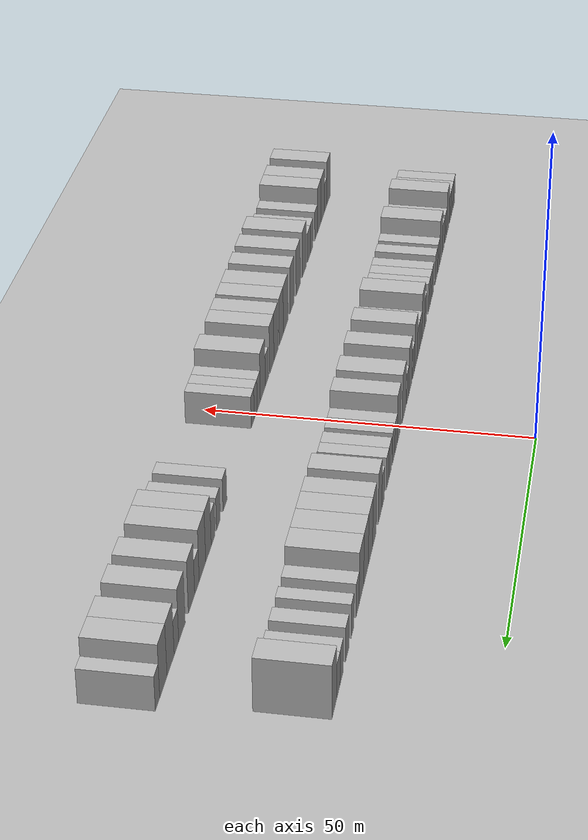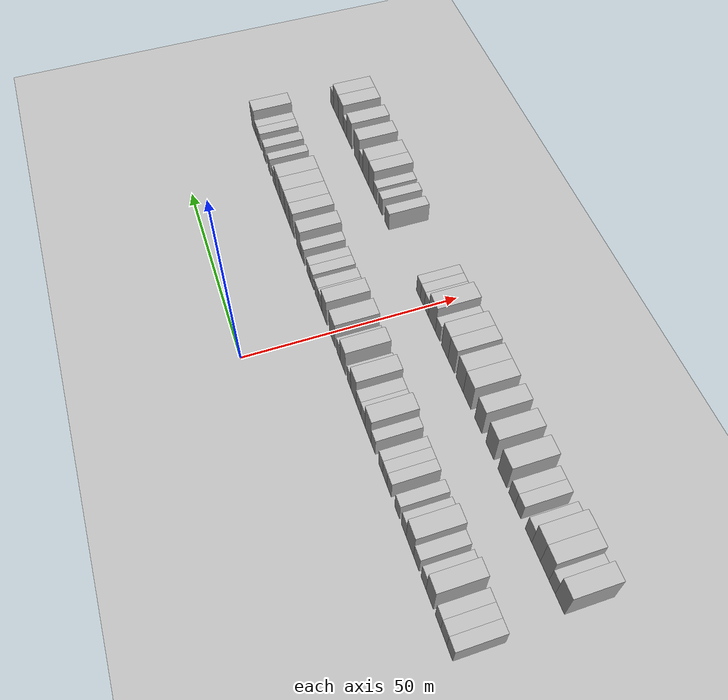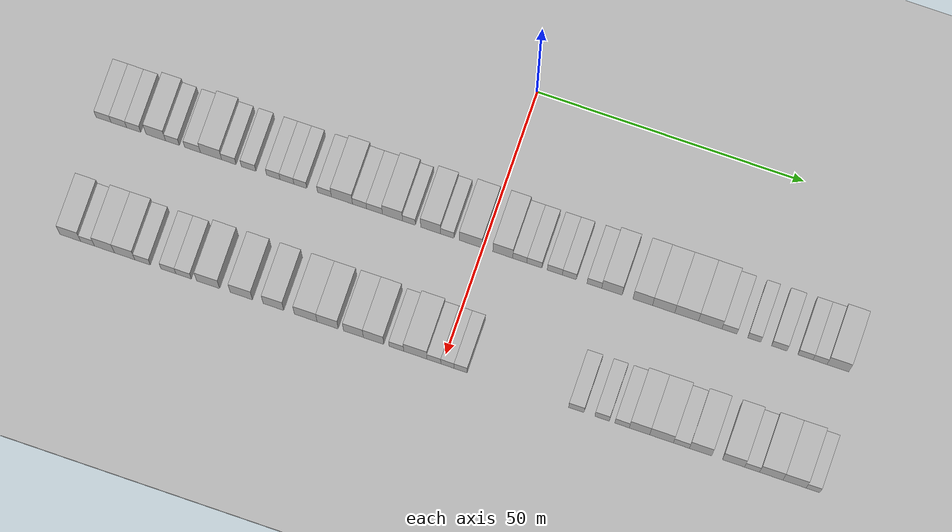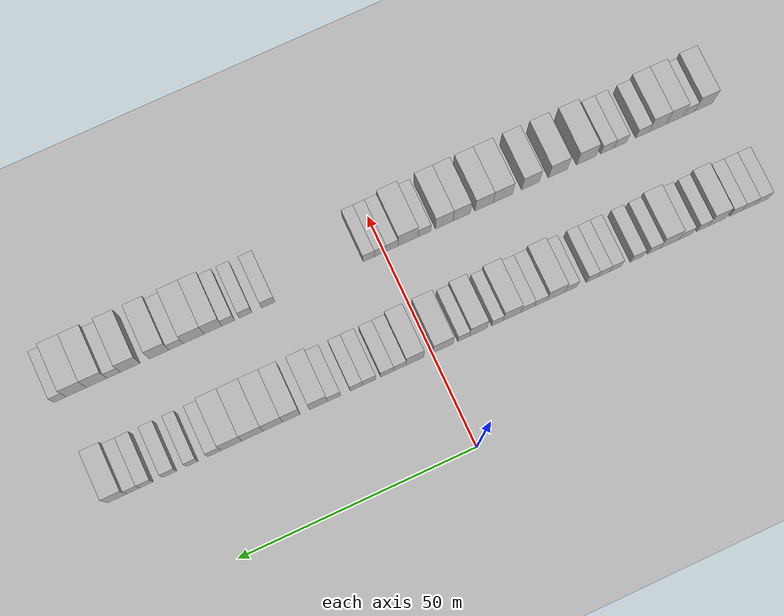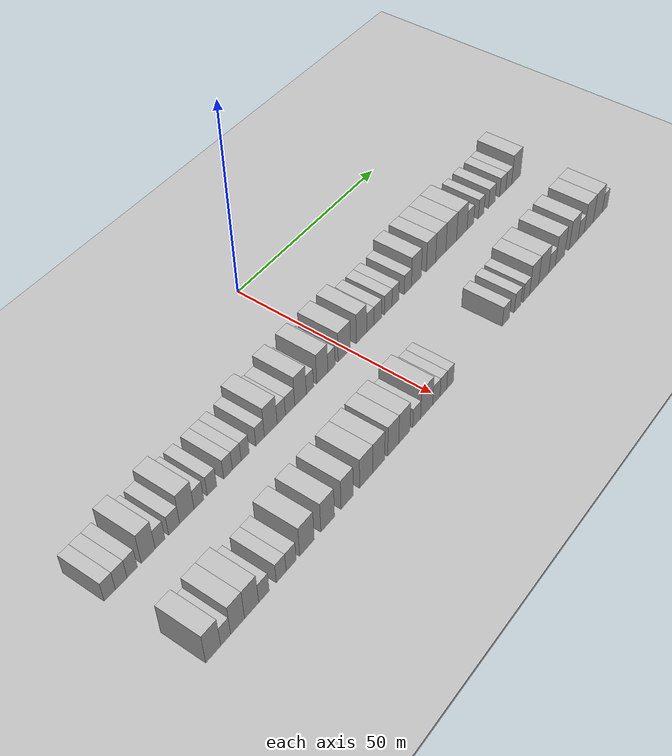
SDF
<sdf version="1.6">
 <world name="default">
  <include><name>ground_plane_1</name><uri>model://HANNAS_ground_plane</uri></include>
  <include>
   <name>ground_plane_2</name>
   <uri>model://HANNAS_ground_plane</uri>
   <pose>100 0 0  0 0 0</pose>
  </include>
  <model name="building_36">
   <static>1</static>
   <pose>25.0000 -71.3508 0 0.000000 0.000000 0.000000</pose>
   <link name="link">
    <pose>0 0 3.00 0 0 0</pose>
    <collision name="collision"><geometry><box><size>10.0000 2.8141 6.0000</size></box></geometry></collision>
    <visual name="visual">
     <cast_shadows>0</cast_shadows>
     <geometry><box><size>10.0000 2.8141 6.0000</size></box></geometry>
     <material>
      <script>
       <uri>model://HANNAS_wall/materials/scripts</uri>
       <uri>model://HANNAS_wall/materials/textures</uri>
       <name>vrc/HANNAS_wall</name>
      </script>
     </material>
    </visual>
   </link>
  </model>
  <model name="building_37">
   <static>1</static>
   <pose>25.0000 -68.4690 0 0.000000 0.000000 0.000000</pose>
   <link name="link">
    <pose>0 0 3.00 0 0 0</pose>
    <collision name="collision"><geometry><box><size>10.0000 2.9496 6.0000</size></box></geometry></collision>
    <visual name="visual">
     <cast_shadows>0</cast_shadows>
     <geometry><box><size>10.0000 2.9496 6.0000</size></box></geometry>
     <material>
      <script>
       <uri>model://HANNAS_wall/materials/scripts</uri>
       <uri>model://HANNAS_wall/materials/textures</uri>
       <name>vrc/HANNAS_wall</name>
      </script>
     </material>
    </visual>
   </link>
  </model>
  <model name="building_38">
   <static>1</static>
   <pose>25.0000 -65.6569 0 0.000000 0.000000 0.000000</pose>
   <link name="link">
    <pose>0 0 3.00 0 0 0</pose>
    <collision name="collision"><geometry><box><size>10.0000 2.6744 6.0000</size></box></geometry></collision>
    <visual name="visual">
     <cast_shadows>0</cast_shadows>
     <geometry><box><size>10.0000 2.6744 6.0000</size></box></geometry>
     <material>
      <script>
       <uri>model://HANNAS_wall/materials/scripts</uri>
       <uri>model://HANNAS_wall/materials/textures</uri>
       <name>vrc/HANNAS_wall</name>
      </script>
     </material>
    </visual>
   </link>
  </model>
  <model name="building_39">
   <static>1</static>
   <pose>25.0000 -61.4845 0 0.000000 0.000000 0.000000</pose>
   <link name="link">
    <pose>0 0 4.50 0 0 0</pose>
    <collision name="collision"><geometry><box><size>10.0000 3.6704 9.0000</size></box></geometry></collision>
    <visual name="visual">
     <cast_shadows>0</cast_shadows>
     <geometry><box><size>10.0000 3.6704 9.0000</size></box></geometry>
     <material>
      <script>
       <uri>model://HANNAS_wall/materials/scripts</uri>
       <uri>model://HANNAS_wall/materials/textures</uri>
       <name>vrc/HANNAS_wall</name>
      </script>
     </material>
    </visual>
   </link>
  </model>
  <model name="building_40">
   <static>1</static>
   <pose>25.0000 -58.3375 0 0.000000 0.000000 0.000000</pose>
   <link name="link">
    <pose>0 0 3.00 0 0 0</pose>
    <collision name="collision"><geometry><box><size>10.0000 2.6237 6.0000</size></box></geometry></collision>
    <visual name="visual">
     <cast_shadows>0</cast_shadows>
     <geometry><box><size>10.0000 2.6237 6.0000</size></box></geometry>
     <material>
      <script>
       <uri>model://HANNAS_wall/materials/scripts</uri>
       <uri>model://HANNAS_wall/materials/textures</uri>
       <name>vrc/HANNAS_wall</name>
      </script>
     </material>
    </visual>
   </link>
  </model>
  <model name="building_41">
   <static>1</static>
   <pose>25.0000 -54.5407 0 0.000000 0.000000 0.000000</pose>
   <link name="link">
    <pose>0 0 3.00 0 0 0</pose>
    <collision name="collision"><geometry><box><size>10.0000 2.9699 6.0000</size></box></geometry></collision>
    <visual name="visual">
     <cast_shadows>0</cast_shadows>
     <geometry><box><size>10.0000 2.9699 6.0000</size></box></geometry>
     <material>
      <script>
       <uri>model://HANNAS_wall/materials/scripts</uri>
       <uri>model://HANNAS_wall/materials/textures</uri>
       <name>vrc/HANNAS_wall</name>
      </script>
     </material>
    </visual>
   </link>
  </model>
  <model name="building_42">
   <static>1</static>
   <pose>25.0000 -51.0551 0 0.000000 0.000000 0.000000</pose>
   <link name="link">
    <pose>0 0 4.50 0 0 0</pose>
    <collision name="collision"><geometry><box><size>10.0000 4.0013 9.0000</size></box></geometry></collision>
    <visual name="visual">
     <cast_shadows>0</cast_shadows>
     <geometry><box><size>10.0000 4.0013 9.0000</size></box></geometry>
     <material>
      <script>
       <uri>model://HANNAS_wall/materials/scripts</uri>
       <uri>model://HANNAS_wall/materials/textures</uri>
       <name>vrc/HANNAS_wall</name>
      </script>
     </material>
    </visual>
   </link>
  </model>
  <model name="building_43">
   <static>1</static>
   <pose>25.0000 -47.6975 0 0.000000 0.000000 0.000000</pose>
   <link name="link">
    <pose>0 0 3.00 0 0 0</pose>
    <collision name="collision"><geometry><box><size>10.0000 2.7139 6.0000</size></box></geometry></collision>
    <visual name="visual">
     <cast_shadows>0</cast_shadows>
     <geometry><box><size>10.0000 2.7139 6.0000</size></box></geometry>
     <material>
      <script>
       <uri>model://HANNAS_wall/materials/scripts</uri>
       <uri>model://HANNAS_wall/materials/textures</uri>
       <name>vrc/HANNAS_wall</name>
      </script>
     </material>
    </visual>
   </link>
  </model>
  <model name="building_44">
   <static>1</static>
   <pose>25.0000 -43.9743 0 0.000000 0.000000 0.000000</pose>
   <link name="link">
    <pose>0 0 3.00 0 0 0</pose>
    <collision name="collision"><geometry><box><size>10.0000 2.7326 6.0000</size></box></geometry></collision>
    <visual name="visual">
     <cast_shadows>0</cast_shadows>
     <geometry><box><size>10.0000 2.7326 6.0000</size></box></geometry>
     <material>
      <script>
       <uri>model://HANNAS_wall/materials/scripts</uri>
       <uri>model://HANNAS_wall/materials/textures</uri>
       <name>vrc/HANNAS_wall</name>
      </script>
     </material>
    </visual>
   </link>
  </model>
  <model name="building_45">
   <static>1</static>
   <pose>25.0000 -39.3342 0 0.000000 0.000000 0.000000</pose>
   <link name="link">
    <pose>0 0 3.00 0 0 0</pose>
    <collision name="collision"><geometry><box><size>10.0000 2.5474 6.0000</size></box></geometry></collision>
    <visual name="visual">
     <cast_shadows>0</cast_shadows>
     <geometry><box><size>10.0000 2.5474 6.0000</size></box></geometry>
     <material>
      <script>
       <uri>model://HANNAS_wall/materials/scripts</uri>
       <uri>model://HANNAS_wall/materials/textures</uri>
       <name>vrc/HANNAS_wall</name>
      </script>
     </material>
    </visual>
   </link>
  </model>
  <model name="building_46">
   <static>1</static>
   <pose>25.0000 -36.7564 0 0.000000 0.000000 0.000000</pose>
   <link name="link">
    <pose>0 0 3.00 0 0 0</pose>
    <collision name="collision"><geometry><box><size>10.0000 2.6083 6.0000</size></box></geometry></collision>
    <visual name="visual">
     <cast_shadows>0</cast_shadows>
     <geometry><box><size>10.0000 2.6083 6.0000</size></box></geometry>
     <material>
      <script>
       <uri>model://HANNAS_wall/materials/scripts</uri>
       <uri>model://HANNAS_wall/materials/textures</uri>
       <name>vrc/HANNAS_wall</name>
      </script>
     </material>
    </visual>
   </link>
  </model>
  <model name="building_47">
   <static>1</static>
   <pose>25.0000 -34.2392 0 0.000000 0.000000 0.000000</pose>
   <link name="link">
    <pose>0 0 3.00 0 0 0</pose>
    <collision name="collision"><geometry><box><size>10.0000 2.4261 6.0000</size></box></geometry></collision>
    <visual name="visual">
     <cast_shadows>0</cast_shadows>
     <geometry><box><size>10.0000 2.4261 6.0000</size></box></geometry>
     <material>
      <script>
       <uri>model://HANNAS_wall/materials/scripts</uri>
       <uri>model://HANNAS_wall/materials/textures</uri>
       <name>vrc/HANNAS_wall</name>
      </script>
     </material>
    </visual>
   </link>
  </model>
  <model name="building_48">
   <static>1</static>
   <pose>25.0000 -29.7129 0 0.000000 0.000000 0.000000</pose>
   <link name="link">
    <pose>0 0 3.00 0 0 0</pose>
    <collision name="collision"><geometry><box><size>10.0000 2.6264 6.0000</size></box></geometry></collision>
    <visual name="visual">
     <cast_shadows>0</cast_shadows>
     <geometry><box><size>10.0000 2.6264 6.0000</size></box></geometry>
     <material>
      <script>
       <uri>model://HANNAS_wall/materials/scripts</uri>
       <uri>model://HANNAS_wall/materials/textures</uri>
       <name>vrc/HANNAS_wall</name>
      </script>
     </material>
    </visual>
   </link>
  </model>
  <model name="building_49">
   <static>1</static>
   <pose>25.0000 -26.4255 0 0.000000 0.000000 0.000000</pose>
   <link name="link">
    <pose>0 0 4.50 0 0 0</pose>
    <collision name="collision"><geometry><box><size>10.0000 3.9484 9.0000</size></box></geometry></collision>
    <visual name="visual">
     <cast_shadows>0</cast_shadows>
     <geometry><box><size>10.0000 3.9484 9.0000</size></box></geometry>
     <material>
      <script>
       <uri>model://HANNAS_wall/materials/scripts</uri>
       <uri>model://HANNAS_wall/materials/textures</uri>
       <name>vrc/HANNAS_wall</name>
      </script>
     </material>
    </visual>
   </link>
  </model>
  <model name="building_50">
   <static>1</static>
   <pose>25.0000 -23.1277 0 0.000000 0.000000 0.000000</pose>
   <link name="link">
    <pose>0 0 3.00 0 0 0</pose>
    <collision name="collision"><geometry><box><size>10.0000 2.6472 6.0000</size></box></geometry></collision>
    <visual name="visual">
     <cast_shadows>0</cast_shadows>
     <geometry><box><size>10.0000 2.6472 6.0000</size></box></geometry>
     <material>
      <script>
       <uri>model://HANNAS_wall/materials/scripts</uri>
       <uri>model://HANNAS_wall/materials/textures</uri>
       <name>vrc/HANNAS_wall</name>
      </script>
     </material>
    </visual>
   </link>
  </model>
  <model name="building_51">
   <static>1</static>
   <pose>25.0000 -20.3226 0 0.000000 0.000000 0.000000</pose>
   <link name="link">
    <pose>0 0 3.00 0 0 0</pose>
    <collision name="collision"><geometry><box><size>10.0000 2.9630 6.0000</size></box></geometry></collision>
    <visual name="visual">
     <cast_shadows>0</cast_shadows>
     <geometry><box><size>10.0000 2.9630 6.0000</size></box></geometry>
     <material>
      <script>
       <uri>model://HANNAS_wall/materials/scripts</uri>
       <uri>model://HANNAS_wall/materials/textures</uri>
       <name>vrc/HANNAS_wall</name>
      </script>
     </material>
    </visual>
   </link>
  </model>
  <model name="building_52">
   <static>1</static>
   <pose>25.0000 -16.9507 0 0.000000 0.000000 0.000000</pose>
   <link name="link">
    <pose>0 0 4.50 0 0 0</pose>
    <collision name="collision"><geometry><box><size>10.0000 3.7808 9.0000</size></box></geometry></collision>
    <visual name="visual">
     <cast_shadows>0</cast_shadows>
     <geometry><box><size>10.0000 3.7808 9.0000</size></box></geometry>
     <material>
      <script>
       <uri>model://HANNAS_wall/materials/scripts</uri>
       <uri>model://HANNAS_wall/materials/textures</uri>
       <name>vrc/HANNAS_wall</name>
      </script>
     </material>
    </visual>
   </link>
  </model>
  <model name="building_53">
   <static>1</static>
   <pose>25.0000 -13.8546 0 0.000000 0.000000 0.000000</pose>
   <link name="link">
    <pose>0 0 3.00 0 0 0</pose>
    <collision name="collision"><geometry><box><size>10.0000 2.4114 6.0000</size></box></geometry></collision>
    <visual name="visual">
     <cast_shadows>0</cast_shadows>
     <geometry><box><size>10.0000 2.4114 6.0000</size></box></geometry>
     <material>
      <script>
       <uri>model://HANNAS_wall/materials/scripts</uri>
       <uri>model://HANNAS_wall/materials/textures</uri>
       <name>vrc/HANNAS_wall</name>
      </script>
     </material>
    </visual>
   </link>
  </model>
  <model name="building_54">
   <static>1</static>
   <pose>25.0000 -9.7814 0 0.000000 0.000000 0.000000</pose>
   <link name="link">
    <pose>0 0 4.50 0 0 0</pose>
    <collision name="collision"><geometry><box><size>10.0000 3.7350 9.0000</size></box></geometry></collision>
    <visual name="visual">
     <cast_shadows>0</cast_shadows>
     <geometry><box><size>10.0000 3.7350 9.0000</size></box></geometry>
     <material>
      <script>
       <uri>model://HANNAS_wall/materials/scripts</uri>
       <uri>model://HANNAS_wall/materials/textures</uri>
       <name>vrc/HANNAS_wall</name>
      </script>
     </material>
    </visual>
   </link>
  </model>
  <model name="building_55">
   <static>1</static>
   <pose>25.0000 -6.6591 0 0.000000 0.000000 0.000000</pose>
   <link name="link">
    <pose>0 0 3.00 0 0 0</pose>
    <collision name="collision"><geometry><box><size>10.0000 2.5096 6.0000</size></box></geometry></collision>
    <visual name="visual">
     <cast_shadows>0</cast_shadows>
     <geometry><box><size>10.0000 2.5096 6.0000</size></box></geometry>
     <material>
      <script>
       <uri>model://HANNAS_wall/materials/scripts</uri>
       <uri>model://HANNAS_wall/materials/textures</uri>
       <name>vrc/HANNAS_wall</name>
      </script>
     </material>
    </visual>
   </link>
  </model>
  <model name="building_56">
   <static>1</static>
   <pose>25.0000 -2.2731 0 0.000000 0.000000 0.000000</pose>
   <link name="link">
    <pose>0 0 4.50 0 0 0</pose>
    <collision name="collision"><geometry><box><size>10.0000 4.2625 9.0000</size></box></geometry></collision>
    <visual name="visual">
     <cast_shadows>0</cast_shadows>
     <geometry><box><size>10.0000 4.2625 9.0000</size></box></geometry>
     <material>
      <script>
       <uri>model://HANNAS_wall/materials/scripts</uri>
       <uri>model://HANNAS_wall/materials/textures</uri>
       <name>vrc/HANNAS_wall</name>
      </script>
     </material>
    </visual>
   </link>
  </model>
  <model name="building_57">
   <static>1</static>
   <pose>25.0000 3.7232 0 0.000000 0.000000 0.000000</pose>
   <link name="link">
    <pose>0 0 4.50 0 0 0</pose>
    <collision name="collision"><geometry><box><size>10.0000 3.7302 9.0000</size></box></geometry></collision>
    <visual name="visual">
     <cast_shadows>0</cast_shadows>
     <geometry><box><size>10.0000 3.7302 9.0000</size></box></geometry>
     <material>
      <script>
       <uri>model://HANNAS_wall/materials/scripts</uri>
       <uri>model://HANNAS_wall/materials/textures</uri>
       <name>vrc/HANNAS_wall</name>
      </script>
     </material>
    </visual>
   </link>
  </model>
  <model name="building_58">
   <static>1</static>
   <pose>25.0000 6.9071 0 0.000000 0.000000 0.000000</pose>
   <link name="link">
    <pose>0 0 3.00 0 0 0</pose>
    <collision name="collision"><geometry><box><size>10.0000 2.6374 6.0000</size></box></geometry></collision>
    <visual name="visual">
     <cast_shadows>0</cast_shadows>
     <geometry><box><size>10.0000 2.6374 6.0000</size></box></geometry>
     <material>
      <script>
       <uri>model://HANNAS_wall/materials/scripts</uri>
       <uri>model://HANNAS_wall/materials/textures</uri>
       <name>vrc/HANNAS_wall</name>
      </script>
     </material>
    </visual>
   </link>
  </model>
  <model name="building_59">
   <static>1</static>
   <pose>25.0000 9.6293 0 0.000000 0.000000 0.000000</pose>
   <link name="link">
    <pose>0 0 3.00 0 0 0</pose>
    <collision name="collision"><geometry><box><size>10.0000 2.8071 6.0000</size></box></geometry></collision>
    <visual name="visual">
     <cast_shadows>0</cast_shadows>
     <geometry><box><size>10.0000 2.8071 6.0000</size></box></geometry>
     <material>
      <script>
       <uri>model://HANNAS_wall/materials/scripts</uri>
       <uri>model://HANNAS_wall/materials/textures</uri>
       <name>vrc/HANNAS_wall</name>
      </script>
     </material>
    </visual>
   </link>
  </model>
  <model name="building_60">
   <static>1</static>
   <pose>25.0000 13.4493 0 0.000000 0.000000 0.000000</pose>
   <link name="link">
    <pose>0 0 3.00 0 0 0</pose>
    <collision name="collision"><geometry><box><size>10.0000 2.8329 6.0000</size></box></geometry></collision>
    <visual name="visual">
     <cast_shadows>0</cast_shadows>
     <geometry><box><size>10.0000 2.8329 6.0000</size></box></geometry>
     <material>
      <script>
       <uri>model://HANNAS_wall/materials/scripts</uri>
       <uri>model://HANNAS_wall/materials/textures</uri>
       <name>vrc/HANNAS_wall</name>
      </script>
     </material>
    </visual>
   </link>
  </model>
  <model name="building_61">
   <static>1</static>
   <pose>25.0000 16.1654 0 0.000000 0.000000 0.000000</pose>
   <link name="link">
    <pose>0 0 3.00 0 0 0</pose>
    <collision name="collision"><geometry><box><size>10.0000 2.5995 6.0000</size></box></geometry></collision>
    <visual name="visual">
     <cast_shadows>0</cast_shadows>
     <geometry><box><size>10.0000 2.5995 6.0000</size></box></geometry>
     <material>
      <script>
       <uri>model://HANNAS_wall/materials/scripts</uri>
       <uri>model://HANNAS_wall/materials/textures</uri>
       <name>vrc/HANNAS_wall</name>
      </script>
     </material>
    </visual>
   </link>
  </model>
  <model name="building_62">
   <static>1</static>
   <pose>25.0000 20.8478 0 0.000000 0.000000 0.000000</pose>
   <link name="link">
    <pose>0 0 3.00 0 0 0</pose>
    <collision name="collision"><geometry><box><size>10.0000 2.7652 6.0000</size></box></geometry></collision>
    <visual name="visual">
     <cast_shadows>0</cast_shadows>
     <geometry><box><size>10.0000 2.7652 6.0000</size></box></geometry>
     <material>
      <script>
       <uri>model://HANNAS_wall/materials/scripts</uri>
       <uri>model://HANNAS_wall/materials/textures</uri>
       <name>vrc/HANNAS_wall</name>
      </script>
     </material>
    </visual>
   </link>
  </model>
  <model name="building_63">
   <static>1</static>
   <pose>25.0000 24.1288 0 0.000000 0.000000 0.000000</pose>
   <link name="link">
    <pose>0 0 4.50 0 0 0</pose>
    <collision name="collision"><geometry><box><size>10.0000 3.7969 9.0000</size></box></geometry></collision>
    <visual name="visual">
     <cast_shadows>0</cast_shadows>
     <geometry><box><size>10.0000 3.7969 9.0000</size></box></geometry>
     <material>
      <script>
       <uri>model://HANNAS_wall/materials/scripts</uri>
       <uri>model://HANNAS_wall/materials/textures</uri>
       <name>vrc/HANNAS_wall</name>
      </script>
     </material>
    </visual>
   </link>
  </model>
  <model name="building_64">
   <static>1</static>
   <pose>25.0000 29.8559 0 0.000000 0.000000 0.000000</pose>
   <link name="link">
    <pose>0 0 4.50 0 0 0</pose>
    <collision name="collision"><geometry><box><size>10.0000 3.6572 9.0000</size></box></geometry></collision>
    <visual name="visual">
     <cast_shadows>0</cast_shadows>
     <geometry><box><size>10.0000 3.6572 9.0000</size></box></geometry>
     <material>
      <script>
       <uri>model://HANNAS_wall/materials/scripts</uri>
       <uri>model://HANNAS_wall/materials/textures</uri>
       <name>vrc/HANNAS_wall</name>
      </script>
     </material>
    </visual>
   </link>
  </model>
  <model name="building_65">
   <static>1</static>
   <pose>25.0000 33.7525 0 0.000000 0.000000 0.000000</pose>
   <link name="link">
    <pose>0 0 4.50 0 0 0</pose>
    <collision name="collision"><geometry><box><size>10.0000 4.1361 9.0000</size></box></geometry></collision>
    <visual name="visual">
     <cast_shadows>0</cast_shadows>
     <geometry><box><size>10.0000 4.1361 9.0000</size></box></geometry>
     <material>
      <script>
       <uri>model://HANNAS_wall/materials/scripts</uri>
       <uri>model://HANNAS_wall/materials/textures</uri>
       <name>vrc/HANNAS_wall</name>
      </script>
     </material>
    </visual>
   </link>
  </model>
  <model name="building_66">
   <static>1</static>
   <pose>25.0000 38.0236 0 0.000000 0.000000 0.000000</pose>
   <link name="link">
    <pose>0 0 4.50 0 0 0</pose>
    <collision name="collision"><geometry><box><size>10.0000 4.4060 9.0000</size></box></geometry></collision>
    <visual name="visual">
     <cast_shadows>0</cast_shadows>
     <geometry><box><size>10.0000 4.4060 9.0000</size></box></geometry>
     <material>
      <script>
       <uri>model://HANNAS_wall/materials/scripts</uri>
       <uri>model://HANNAS_wall/materials/textures</uri>
       <name>vrc/HANNAS_wall</name>
      </script>
     </material>
    </visual>
   </link>
  </model>
  <model name="building_67">
   <static>1</static>
   <pose>25.0000 42.4090 0 0.000000 0.000000 0.000000</pose>
   <link name="link">
    <pose>0 0 4.50 0 0 0</pose>
    <collision name="collision"><geometry><box><size>10.0000 4.3649 9.0000</size></box></geometry></collision>
    <visual name="visual">
     <cast_shadows>0</cast_shadows>
     <geometry><box><size>10.0000 4.3649 9.0000</size></box></geometry>
     <material>
      <script>
       <uri>model://HANNAS_wall/materials/scripts</uri>
       <uri>model://HANNAS_wall/materials/textures</uri>
       <name>vrc/HANNAS_wall</name>
      </script>
     </material>
    </visual>
   </link>
  </model>
  <model name="building_68">
   <static>1</static>
   <pose>25.0000 45.9888 0 0.000000 0.000000 0.000000</pose>
   <link name="link">
    <pose>0 0 3.00 0 0 0</pose>
    <collision name="collision"><geometry><box><size>10.0000 2.7946 6.0000</size></box></geometry></collision>
    <visual name="visual">
     <cast_shadows>0</cast_shadows>
     <geometry><box><size>10.0000 2.7946 6.0000</size></box></geometry>
     <material>
      <script>
       <uri>model://HANNAS_wall/materials/scripts</uri>
       <uri>model://HANNAS_wall/materials/textures</uri>
       <name>vrc/HANNAS_wall</name>
      </script>
     </material>
    </visual>
   </link>
  </model>
  <model name="building_69">
   <static>1</static>
   <pose>25.0000 50.6030 0 0.000000 0.000000 0.000000</pose>
   <link name="link">
    <pose>0 0 3.00 0 0 0</pose>
    <collision name="collision"><geometry><box><size>10.0000 2.4339 6.0000</size></box></geometry></collision>
    <visual name="visual">
     <cast_shadows>0</cast_shadows>
     <geometry><box><size>10.0000 2.4339 6.0000</size></box></geometry>
     <material>
      <script>
       <uri>model://HANNAS_wall/materials/scripts</uri>
       <uri>model://HANNAS_wall/materials/textures</uri>
       <name>vrc/HANNAS_wall</name>
      </script>
     </material>
    </visual>
   </link>
  </model>
  <model name="building_70">
   <static>1</static>
   <pose>25.0000 55.2646 0 0.000000 0.000000 0.000000</pose>
   <link name="link">
    <pose>0 0 3.00 0 0 0</pose>
    <collision name="collision"><geometry><box><size>10.0000 2.8891 6.0000</size></box></geometry></collision>
    <visual name="visual">
     <cast_shadows>0</cast_shadows>
     <geometry><box><size>10.0000 2.8891 6.0000</size></box></geometry>
     <material>
      <script>
       <uri>model://HANNAS_wall/materials/scripts</uri>
       <uri>model://HANNAS_wall/materials/textures</uri>
       <name>vrc/HANNAS_wall</name>
      </script>
     </material>
    </visual>
   </link>
  </model>
  <model name="building_71">
   <static>1</static>
   <pose>25.0000 60.1065 0 0.000000 0.000000 0.000000</pose>
   <link name="link">
    <pose>0 0 3.00 0 0 0</pose>
    <collision name="collision"><geometry><box><size>10.0000 2.7948 6.0000</size></box></geometry></collision>
    <visual name="visual">
     <cast_shadows>0</cast_shadows>
     <geometry><box><size>10.0000 2.7948 6.0000</size></box></geometry>
     <material>
      <script>
       <uri>model://HANNAS_wall/materials/scripts</uri>
       <uri>model://HANNAS_wall/materials/textures</uri>
       <name>vrc/HANNAS_wall</name>
      </script>
     </material>
    </visual>
   </link>
  </model>
  <model name="building_72">
   <static>1</static>
   <pose>25.0000 62.8110 0 0.000000 0.000000 0.000000</pose>
   <link name="link">
    <pose>0 0 3.00 0 0 0</pose>
    <collision name="collision"><geometry><box><size>10.0000 2.6142 6.0000</size></box></geometry></collision>
    <visual name="visual">
     <cast_shadows>0</cast_shadows>
     <geometry><box><size>10.0000 2.6142 6.0000</size></box></geometry>
     <material>
      <script>
       <uri>model://HANNAS_wall/materials/scripts</uri>
       <uri>model://HANNAS_wall/materials/textures</uri>
       <name>vrc/HANNAS_wall</name>
      </script>
     </material>
    </visual>
   </link>
  </model>
  <model name="building_73">
   <static>1</static>
   <pose>25.0000 66.1387 0 0.000000 0.000000 0.000000</pose>
   <link name="link">
    <pose>0 0 4.50 0 0 0</pose>
    <collision name="collision"><geometry><box><size>10.0000 4.0413 9.0000</size></box></geometry></collision>
    <visual name="visual">
     <cast_shadows>0</cast_shadows>
     <geometry><box><size>10.0000 4.0413 9.0000</size></box></geometry>
     <material>
      <script>
       <uri>model://HANNAS_wall/materials/scripts</uri>
       <uri>model://HANNAS_wall/materials/textures</uri>
       <name>vrc/HANNAS_wall</name>
      </script>
     </material>
    </visual>
   </link>
  </model>
  <model name="building_143">
   <static>1</static>
   <pose>47.0000 -69.6910 0 0.000000 0.000000 0.000000</pose>
   <link name="link">
    <pose>0 0 4.50 0 0 0</pose>
    <collision name="collision"><geometry><box><size>10.0000 3.8808 9.0000</size></box></geometry></collision>
    <visual name="visual">
     <cast_shadows>0</cast_shadows>
     <geometry><box><size>10.0000 3.8808 9.0000</size></box></geometry>
     <material>
      <script>
       <uri>model://HANNAS_wall/materials/scripts</uri>
       <uri>model://HANNAS_wall/materials/textures</uri>
       <name>vrc/HANNAS_wall</name>
      </script>
     </material>
    </visual>
   </link>
  </model>
  <model name="building_144">
   <static>1</static>
   <pose>47.0000 -66.4409 0 0.000000 0.000000 0.000000</pose>
   <link name="link">
    <pose>0 0 3.00 0 0 0</pose>
    <collision name="collision"><geometry><box><size>10.0000 2.6194 6.0000</size></box></geometry></collision>
    <visual name="visual">
     <cast_shadows>0</cast_shadows>
     <geometry><box><size>10.0000 2.6194 6.0000</size></box></geometry>
     <material>
      <script>
       <uri>model://HANNAS_wall/materials/scripts</uri>
       <uri>model://HANNAS_wall/materials/textures</uri>
       <name>vrc/HANNAS_wall</name>
      </script>
     </material>
    </visual>
   </link>
  </model>
  <model name="building_145">
   <static>1</static>
   <pose>47.0000 -63.2631 0 0.000000 0.000000 0.000000</pose>
   <link name="link">
    <pose>0 0 4.50 0 0 0</pose>
    <collision name="collision"><geometry><box><size>10.0000 3.7363 9.0000</size></box></geometry></collision>
    <visual name="visual">
     <cast_shadows>0</cast_shadows>
     <geometry><box><size>10.0000 3.7363 9.0000</size></box></geometry>
     <material>
      <script>
       <uri>model://HANNAS_wall/materials/scripts</uri>
       <uri>model://HANNAS_wall/materials/textures</uri>
       <name>vrc/HANNAS_wall</name>
      </script>
     </material>
    </visual>
   </link>
  </model>
  <model name="building_146">
   <static>1</static>
   <pose>47.0000 -59.4817 0 0.000000 0.000000 0.000000</pose>
   <link name="link">
    <pose>0 0 4.50 0 0 0</pose>
    <collision name="collision"><geometry><box><size>10.0000 3.8264 9.0000</size></box></geometry></collision>
    <visual name="visual">
     <cast_shadows>0</cast_shadows>
     <geometry><box><size>10.0000 3.8264 9.0000</size></box></geometry>
     <material>
      <script>
       <uri>model://HANNAS_wall/materials/scripts</uri>
       <uri>model://HANNAS_wall/materials/textures</uri>
       <name>vrc/HANNAS_wall</name>
      </script>
     </material>
    </visual>
   </link>
  </model>
  <model name="building_147">
   <static>1</static>
   <pose>47.0000 -56.1107 0 0.000000 0.000000 0.000000</pose>
   <link name="link">
    <pose>0 0 3.00 0 0 0</pose>
    <collision name="collision"><geometry><box><size>10.0000 2.9157 6.0000</size></box></geometry></collision>
    <visual name="visual">
     <cast_shadows>0</cast_shadows>
     <geometry><box><size>10.0000 2.9157 6.0000</size></box></geometry>
     <material>
      <script>
       <uri>model://HANNAS_wall/materials/scripts</uri>
       <uri>model://HANNAS_wall/materials/textures</uri>
       <name>vrc/HANNAS_wall</name>
      </script>
     </material>
    </visual>
   </link>
  </model>
  <model name="building_148">
   <static>1</static>
   <pose>47.0000 -51.2580 0 0.000000 0.000000 0.000000</pose>
   <link name="link">
    <pose>0 0 3.00 0 0 0</pose>
    <collision name="collision"><geometry><box><size>10.0000 2.7895 6.0000</size></box></geometry></collision>
    <visual name="visual">
     <cast_shadows>0</cast_shadows>
     <geometry><box><size>10.0000 2.7895 6.0000</size></box></geometry>
     <material>
      <script>
       <uri>model://HANNAS_wall/materials/scripts</uri>
       <uri>model://HANNAS_wall/materials/textures</uri>
       <name>vrc/HANNAS_wall</name>
      </script>
     </material>
    </visual>
   </link>
  </model>
  <model name="building_149">
   <static>1</static>
   <pose>47.0000 -48.4058 0 0.000000 0.000000 0.000000</pose>
   <link name="link">
    <pose>0 0 3.00 0 0 0</pose>
    <collision name="collision"><geometry><box><size>10.0000 2.9150 6.0000</size></box></geometry></collision>
    <visual name="visual">
     <cast_shadows>0</cast_shadows>
     <geometry><box><size>10.0000 2.9150 6.0000</size></box></geometry>
     <material>
      <script>
       <uri>model://HANNAS_wall/materials/scripts</uri>
       <uri>model://HANNAS_wall/materials/textures</uri>
       <name>vrc/HANNAS_wall</name>
      </script>
     </material>
    </visual>
   </link>
  </model>
  <model name="building_150">
   <static>1</static>
   <pose>47.0000 -43.7918 0 0.000000 0.000000 0.000000</pose>
   <link name="link">
    <pose>0 0 4.50 0 0 0</pose>
    <collision name="collision"><geometry><box><size>10.0000 4.3130 9.0000</size></box></geometry></collision>
    <visual name="visual">
     <cast_shadows>0</cast_shadows>
     <geometry><box><size>10.0000 4.3130 9.0000</size></box></geometry>
     <material>
      <script>
       <uri>model://HANNAS_wall/materials/scripts</uri>
       <uri>model://HANNAS_wall/materials/textures</uri>
       <name>vrc/HANNAS_wall</name>
      </script>
     </material>
    </visual>
   </link>
  </model>
  <model name="building_151">
   <static>1</static>
   <pose>47.0000 -37.5613 0 0.000000 0.000000 0.000000</pose>
   <link name="link">
    <pose>0 0 4.50 0 0 0</pose>
    <collision name="collision"><geometry><box><size>10.0000 4.1480 9.0000</size></box></geometry></collision>
    <visual name="visual">
     <cast_shadows>0</cast_shadows>
     <geometry><box><size>10.0000 4.1480 9.0000</size></box></geometry>
     <material>
      <script>
       <uri>model://HANNAS_wall/materials/scripts</uri>
       <uri>model://HANNAS_wall/materials/textures</uri>
       <name>vrc/HANNAS_wall</name>
      </script>
     </material>
    </visual>
   </link>
  </model>
  <model name="building_152">
   <static>1</static>
   <pose>47.0000 -31.5616 0 0.000000 0.000000 0.000000</pose>
   <link name="link">
    <pose>0 0 4.50 0 0 0</pose>
    <collision name="collision"><geometry><box><size>10.0000 3.8513 9.0000</size></box></geometry></collision>
    <visual name="visual">
     <cast_shadows>0</cast_shadows>
     <geometry><box><size>10.0000 3.8513 9.0000</size></box></geometry>
     <material>
      <script>
       <uri>model://HANNAS_wall/materials/scripts</uri>
       <uri>model://HANNAS_wall/materials/textures</uri>
       <name>vrc/HANNAS_wall</name>
      </script>
     </material>
    </visual>
   </link>
  </model>
  <model name="building_153">
   <static>1</static>
   <pose>47.0000 -25.5179 0 0.000000 0.000000 0.000000</pose>
   <link name="link">
    <pose>0 0 4.50 0 0 0</pose>
    <collision name="collision"><geometry><box><size>10.0000 4.2362 9.0000</size></box></geometry></collision>
    <visual name="visual">
     <cast_shadows>0</cast_shadows>
     <geometry><box><size>10.0000 4.2362 9.0000</size></box></geometry>
     <material>
      <script>
       <uri>model://HANNAS_wall/materials/scripts</uri>
       <uri>model://HANNAS_wall/materials/textures</uri>
       <name>vrc/HANNAS_wall</name>
      </script>
     </material>
    </visual>
   </link>
  </model>
  <model name="building_154">
   <static>1</static>
   <pose>47.0000 -21.4261 0 0.000000 0.000000 0.000000</pose>
   <link name="link">
    <pose>0 0 4.50 0 0 0</pose>
    <collision name="collision"><geometry><box><size>10.0000 3.9474 9.0000</size></box></geometry></collision>
    <visual name="visual">
     <cast_shadows>0</cast_shadows>
     <geometry><box><size>10.0000 3.9474 9.0000</size></box></geometry>
     <material>
      <script>
       <uri>model://HANNAS_wall/materials/scripts</uri>
       <uri>model://HANNAS_wall/materials/textures</uri>
       <name>vrc/HANNAS_wall</name>
      </script>
     </material>
    </visual>
   </link>
  </model>
  <model name="building_155">
   <static>1</static>
   <pose>47.0000 -16.6064 0 0.000000 0.000000 0.000000</pose>
   <link name="link">
    <pose>0 0 4.50 0 0 0</pose>
    <collision name="collision"><geometry><box><size>10.0000 3.6920 9.0000</size></box></geometry></collision>
    <visual name="visual">
     <cast_shadows>0</cast_shadows>
     <geometry><box><size>10.0000 3.6920 9.0000</size></box></geometry>
     <material>
      <script>
       <uri>model://HANNAS_wall/materials/scripts</uri>
       <uri>model://HANNAS_wall/materials/textures</uri>
       <name>vrc/HANNAS_wall</name>
      </script>
     </material>
    </visual>
   </link>
  </model>
  <model name="building_156">
   <static>1</static>
   <pose>47.0000 -12.8493 0 0.000000 0.000000 0.000000</pose>
   <link name="link">
    <pose>0 0 4.50 0 0 0</pose>
    <collision name="collision"><geometry><box><size>10.0000 3.8223 9.0000</size></box></geometry></collision>
    <visual name="visual">
     <cast_shadows>0</cast_shadows>
     <geometry><box><size>10.0000 3.8223 9.0000</size></box></geometry>
     <material>
      <script>
       <uri>model://HANNAS_wall/materials/scripts</uri>
       <uri>model://HANNAS_wall/materials/textures</uri>
       <name>vrc/HANNAS_wall</name>
      </script>
     </material>
    </visual>
   </link>
  </model>
  <model name="building_157">
   <static>1</static>
   <pose>47.0000 -8.5850 0 0.000000 0.000000 0.000000</pose>
   <link name="link">
    <pose>0 0 3.00 0 0 0</pose>
    <collision name="collision"><geometry><box><size>10.0000 2.7063 6.0000</size></box></geometry></collision>
    <visual name="visual">
     <cast_shadows>0</cast_shadows>
     <geometry><box><size>10.0000 2.7063 6.0000</size></box></geometry>
     <material>
      <script>
       <uri>model://HANNAS_wall/materials/scripts</uri>
       <uri>model://HANNAS_wall/materials/textures</uri>
       <name>vrc/HANNAS_wall</name>
      </script>
     </material>
    </visual>
   </link>
  </model>
  <model name="building_158">
   <static>1</static>
   <pose>47.0000 -5.0566 0 0.000000 0.000000 0.000000</pose>
   <link name="link">
    <pose>0 0 4.50 0 0 0</pose>
    <collision name="collision"><geometry><box><size>10.0000 4.3505 9.0000</size></box></geometry></collision>
    <visual name="visual">
     <cast_shadows>0</cast_shadows>
     <geometry><box><size>10.0000 4.3505 9.0000</size></box></geometry>
     <material>
      <script>
       <uri>model://HANNAS_wall/materials/scripts</uri>
       <uri>model://HANNAS_wall/materials/textures</uri>
       <name>vrc/HANNAS_wall</name>
      </script>
     </material>
    </visual>
   </link>
  </model>
  <model name="building_159">
   <static>1</static>
   <pose>47.0000 -1.5965 0 0.000000 0.000000 0.000000</pose>
   <link name="link">
    <pose>0 0 3.00 0 0 0</pose>
    <collision name="collision"><geometry><box><size>10.0000 2.5698 6.0000</size></box></geometry></collision>
    <visual name="visual">
     <cast_shadows>0</cast_shadows>
     <geometry><box><size>10.0000 2.5698 6.0000</size></box></geometry>
     <material>
      <script>
       <uri>model://HANNAS_wall/materials/scripts</uri>
       <uri>model://HANNAS_wall/materials/textures</uri>
       <name>vrc/HANNAS_wall</name>
      </script>
     </material>
    </visual>
   </link>
  </model>
  <model name="building_160">
   <static>1</static>
   <pose>47.0000 0.9213 0 0.000000 0.000000 0.000000</pose>
   <link name="link">
    <pose>0 0 3.00 0 0 0</pose>
    <collision name="collision"><geometry><box><size>10.0000 2.4657 6.0000</size></box></geometry></collision>
    <visual name="visual">
     <cast_shadows>0</cast_shadows>
     <geometry><box><size>10.0000 2.4657 6.0000</size></box></geometry>
     <material>
      <script>
       <uri>model://HANNAS_wall/materials/scripts</uri>
       <uri>model://HANNAS_wall/materials/textures</uri>
       <name>vrc/HANNAS_wall</name>
      </script>
     </material>
    </visual>
   </link>
  </model>
  <model name="building_161">
   <static>1</static>
   <pose>47.0000 3.3872 0 0.000000 0.000000 0.000000</pose>
   <link name="link">
    <pose>0 0 3.00 0 0 0</pose>
    <collision name="collision"><geometry><box><size>10.0000 2.4661 6.0000</size></box></geometry></collision>
    <visual name="visual">
     <cast_shadows>0</cast_shadows>
     <geometry><box><size>10.0000 2.4661 6.0000</size></box></geometry>
     <material>
      <script>
       <uri>model://HANNAS_wall/materials/scripts</uri>
       <uri>model://HANNAS_wall/materials/textures</uri>
       <name>vrc/HANNAS_wall</name>
      </script>
     </material>
    </visual>
   </link>
  </model>
  <model name="building_162">
   <static>1</static>
   <pose>47.0000 24.9193 0 0.000000 0.000000 0.000000</pose>
   <link name="link">
    <pose>0 0 3.00 0 0 0</pose>
    <collision name="collision"><geometry><box><size>10.0000 2.8660 6.0000</size></box></geometry></collision>
    <visual name="visual">
     <cast_shadows>0</cast_shadows>
     <geometry><box><size>10.0000 2.8660 6.0000</size></box></geometry>
     <material>
      <script>
       <uri>model://HANNAS_wall/materials/scripts</uri>
       <uri>model://HANNAS_wall/materials/textures</uri>
       <name>vrc/HANNAS_wall</name>
      </script>
     </material>
    </visual>
   </link>
  </model>
  <model name="building_163">
   <static>1</static>
   <pose>47.0000 29.7009 0 0.000000 0.000000 0.000000</pose>
   <link name="link">
    <pose>0 0 3.00 0 0 0</pose>
    <collision name="collision"><geometry><box><size>10.0000 2.6972 6.0000</size></box></geometry></collision>
    <visual name="visual">
     <cast_shadows>0</cast_shadows>
     <geometry><box><size>10.0000 2.6972 6.0000</size></box></geometry>
     <material>
      <script>
       <uri>model://HANNAS_wall/materials/scripts</uri>
       <uri>model://HANNAS_wall/materials/textures</uri>
       <name>vrc/HANNAS_wall</name>
      </script>
     </material>
    </visual>
   </link>
  </model>
  <model name="building_164">
   <static>1</static>
   <pose>47.0000 33.3970 0 0.000000 0.000000 0.000000</pose>
   <link name="link">
    <pose>0 0 3.00 0 0 0</pose>
    <collision name="collision"><geometry><box><size>10.0000 2.6949 6.0000</size></box></geometry></collision>
    <visual name="visual">
     <cast_shadows>0</cast_shadows>
     <geometry><box><size>10.0000 2.6949 6.0000</size></box></geometry>
     <material>
      <script>
       <uri>model://HANNAS_wall/materials/scripts</uri>
       <uri>model://HANNAS_wall/materials/textures</uri>
       <name>vrc/HANNAS_wall</name>
      </script>
     </material>
    </visual>
   </link>
  </model>
  <model name="building_165">
   <static>1</static>
   <pose>47.0000 36.6351 0 0.000000 0.000000 0.000000</pose>
   <link name="link">
    <pose>0 0 4.50 0 0 0</pose>
    <collision name="collision"><geometry><box><size>10.0000 3.7814 9.0000</size></box></geometry></collision>
    <visual name="visual">
     <cast_shadows>0</cast_shadows>
     <geometry><box><size>10.0000 3.7814 9.0000</size></box></geometry>
     <material>
      <script>
       <uri>model://HANNAS_wall/materials/scripts</uri>
       <uri>model://HANNAS_wall/materials/textures</uri>
       <name>vrc/HANNAS_wall</name>
      </script>
     </material>
    </visual>
   </link>
  </model>
  <model name="building_166">
   <static>1</static>
   <pose>47.0000 40.7223 0 0.000000 0.000000 0.000000</pose>
   <link name="link">
    <pose>0 0 4.50 0 0 0</pose>
    <collision name="collision"><geometry><box><size>10.0000 4.3929 9.0000</size></box></geometry></collision>
    <visual name="visual">
     <cast_shadows>0</cast_shadows>
     <geometry><box><size>10.0000 4.3929 9.0000</size></box></geometry>
     <material>
      <script>
       <uri>model://HANNAS_wall/materials/scripts</uri>
       <uri>model://HANNAS_wall/materials/textures</uri>
       <name>vrc/HANNAS_wall</name>
      </script>
     </material>
    </visual>
   </link>
  </model>
  <model name="building_167">
   <static>1</static>
   <pose>47.0000 44.4061 0 0.000000 0.000000 0.000000</pose>
   <link name="link">
    <pose>0 0 3.00 0 0 0</pose>
    <collision name="collision"><geometry><box><size>10.0000 2.9748 6.0000</size></box></geometry></collision>
    <visual name="visual">
     <cast_shadows>0</cast_shadows>
     <geometry><box><size>10.0000 2.9748 6.0000</size></box></geometry>
     <material>
      <script>
       <uri>model://HANNAS_wall/materials/scripts</uri>
       <uri>model://HANNAS_wall/materials/textures</uri>
       <name>vrc/HANNAS_wall</name>
      </script>
     </material>
    </visual>
   </link>
  </model>
  <model name="building_168">
   <static>1</static>
   <pose>47.0000 47.9503 0 0.000000 0.000000 0.000000</pose>
   <link name="link">
    <pose>0 0 4.50 0 0 0</pose>
    <collision name="collision"><geometry><box><size>10.0000 4.1134 9.0000</size></box></geometry></collision>
    <visual name="visual">
     <cast_shadows>0</cast_shadows>
     <geometry><box><size>10.0000 4.1134 9.0000</size></box></geometry>
     <material>
      <script>
       <uri>model://HANNAS_wall/materials/scripts</uri>
       <uri>model://HANNAS_wall/materials/textures</uri>
       <name>vrc/HANNAS_wall</name>
      </script>
     </material>
    </visual>
   </link>
  </model>
  <model name="building_169">
   <static>1</static>
   <pose>47.0000 54.0450 0 0.000000 0.000000 0.000000</pose>
   <link name="link">
    <pose>0 0 4.50 0 0 0</pose>
    <collision name="collision"><geometry><box><size>10.0000 4.0761 9.0000</size></box></geometry></collision>
    <visual name="visual">
     <cast_shadows>0</cast_shadows>
     <geometry><box><size>10.0000 4.0761 9.0000</size></box></geometry>
     <material>
      <script>
       <uri>model://HANNAS_wall/materials/scripts</uri>
       <uri>model://HANNAS_wall/materials/textures</uri>
       <name>vrc/HANNAS_wall</name>
      </script>
     </material>
    </visual>
   </link>
  </model>
  <model name="building_170">
   <static>1</static>
   <pose>47.0000 57.4777 0 0.000000 0.000000 0.000000</pose>
   <link name="link">
    <pose>0 0 3.00 0 0 0</pose>
    <collision name="collision"><geometry><box><size>10.0000 2.7892 6.0000</size></box></geometry></collision>
    <visual name="visual">
     <cast_shadows>0</cast_shadows>
     <geometry><box><size>10.0000 2.7892 6.0000</size></box></geometry>
     <material>
      <script>
       <uri>model://HANNAS_wall/materials/scripts</uri>
       <uri>model://HANNAS_wall/materials/textures</uri>
       <name>vrc/HANNAS_wall</name>
      </script>
     </material>
    </visual>
   </link>
  </model>
  <model name="building_171">
   <static>1</static>
   <pose>47.0000 61.0222 0 0.000000 0.000000 0.000000</pose>
   <link name="link">
    <pose>0 0 4.50 0 0 0</pose>
    <collision name="collision"><geometry><box><size>10.0000 4.2998 9.0000</size></box></geometry></collision>
    <visual name="visual">
     <cast_shadows>0</cast_shadows>
     <geometry><box><size>10.0000 4.2998 9.0000</size></box></geometry>
     <material>
      <script>
       <uri>model://HANNAS_wall/materials/scripts</uri>
       <uri>model://HANNAS_wall/materials/textures</uri>
       <name>vrc/HANNAS_wall</name>
      </script>
     </material>
    </visual>
   </link>
  </model>
  <model name="building_172">
   <static>1</static>
   <pose>47.0000 65.3253 0 0.000000 0.000000 0.000000</pose>
   <link name="link">
    <pose>0 0 4.50 0 0 0</pose>
    <collision name="collision"><geometry><box><size>10.0000 4.3064 9.0000</size></box></geometry></collision>
    <visual name="visual">
     <cast_shadows>0</cast_shadows>
     <geometry><box><size>10.0000 4.3064 9.0000</size></box></geometry>
     <material>
      <script>
       <uri>model://HANNAS_wall/materials/scripts</uri>
       <uri>model://HANNAS_wall/materials/textures</uri>
       <name>vrc/HANNAS_wall</name>
      </script>
     </material>
    </visual>
   </link>
  </model>
  <model name="building_173">
   <static>1</static>
   <pose>47.0000 68.7476 0 0.000000 0.000000 0.000000</pose>
   <link name="link">
    <pose>0 0 3.00 0 0 0</pose>
    <collision name="collision"><geometry><box><size>10.0000 2.5383 6.0000</size></box></geometry></collision>
    <visual name="visual">
     <cast_shadows>0</cast_shadows>
     <geometry><box><size>10.0000 2.5383 6.0000</size></box></geometry>
     <material>
      <script>
       <uri>model://HANNAS_wall/materials/scripts</uri>
       <uri>model://HANNAS_wall/materials/textures</uri>
       <name>vrc/HANNAS_wall</name>
      </script>
     </material>
    </visual>
   </link>
  </model>
 </world>
</sdf>
